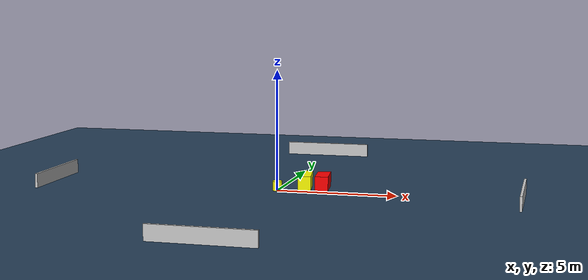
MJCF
<?xml version="1.0" ?>
<mujoco model="generated_environment">
  <option timestep="0.01" integrator="RK4" cone="elliptic"/>
  <default>
    <geom density="1"/>
  </default>
  <asset>
    <texture builtin="gradient" height="3072" name="skybox" rgb1="0.3 0.5 0.7" rgb2="0 0 0" type="skybox" width="512"/>
    <texture builtin="checker" height="300" name="groundplane" rgb1="0.2 0.3 0.4" rgb2="0.1 0.2 0.3" type="2d" width="300"/>
    <material name="groundplane" reflectance="0.2" texrepeat="5 5" texture="groundplane"/>
  </asset>
  <worldbody>
    <light dir="0 0 -1" directional="true" pos="0 0 1.5"/>
    <geom condim="3" friction="0.5 0.005 0.001" material="groundplane" name="floor" pos="0 0 0" size="0 0 0.05" type="plane"/>
    <body name="walls">
      <geom name="wall_1" condim="4" pos="-10.0 0.0 0.3" rgba="0.800000011920929 0.800000011920929 0.800000011920929 1.0" size="0.05 2.0 0.3" type="box"/>
      <geom name="wall_2" condim="4" pos="10.0 0.0 0.3" rgba="0.800000011920929 0.800000011920929 0.800000011920929 1.0" size="0.05 2.0 0.3" type="box"/>
      <geom name="wall_3" condim="4" pos="0.0 -10.0 0.3" rgba="0.800000011920929 0.800000011920929 0.800000011920929 1.0" size="2.0 0.05 0.3" type="box"/>
      <geom name="wall_4" condim="4" pos="0.0 10.0 0.3" rgba="0.800000011920929 0.800000011920929 0.800000011920929 1.0" size="2.0 0.05 0.3" type="box"/>
    </body>
    <body name="robot">
      <joint name="joint_x" type="slide" pos="0 0 0" axis="1 0 0"/>
      <joint name="joint_y" type="slide" pos="0 0 0" axis="0 1 0"/>
      <geom name="robot" type="cylinder" pos="0.0 0.0 0.2" size="0.2 0.2 0.0" mass="5.0" friction="1.0 0.005 0.0001" condim="4" rgba="1.0 1.0 0.0 1.0"/>
    </body>
    <body name="obstacle_1_movable">
      <geom name="obstacle_1_movable" condim="4" pos="0.9735854206396491 0.9069141119024222 0.3" euler="0 0 99.41753902198383" friction="0.0 0.005 0.001" rgba="1.0 1.0 0.0 1.0" size="0.719873672052328 0.2766856870103497 0.3" type="box" mass="0.1"/>
      <joint type="free"/>
    </body>
    <body name="obstacle_2_static">
      <geom name="obstacle_2_static" condim="4" pos="1.7282123487914458 0.9415905518684529 0.3" euler="0 0 6.541988057727801" friction="0.0 0.005 0.001" rgba="1.0 0.0 0.0 1.0" size="0.2735674241201457 0.6559793269345906 0.3" type="box"/>
    </body>
  </worldbody>
  <actuator>
    <motor name="actuator_x" joint="joint_x" gear="1" ctrlrange="-1 1"/>
    <motor name="actuator_y" joint="joint_y" gear="1" ctrlrange="-1 1"/>
  </actuator>
</mujoco>
